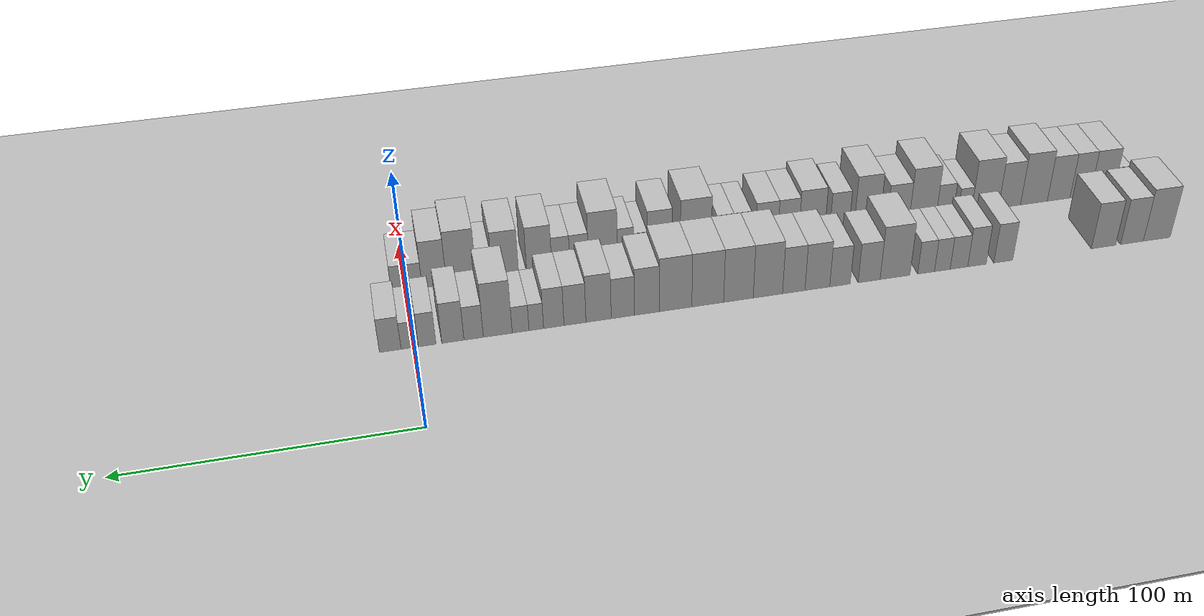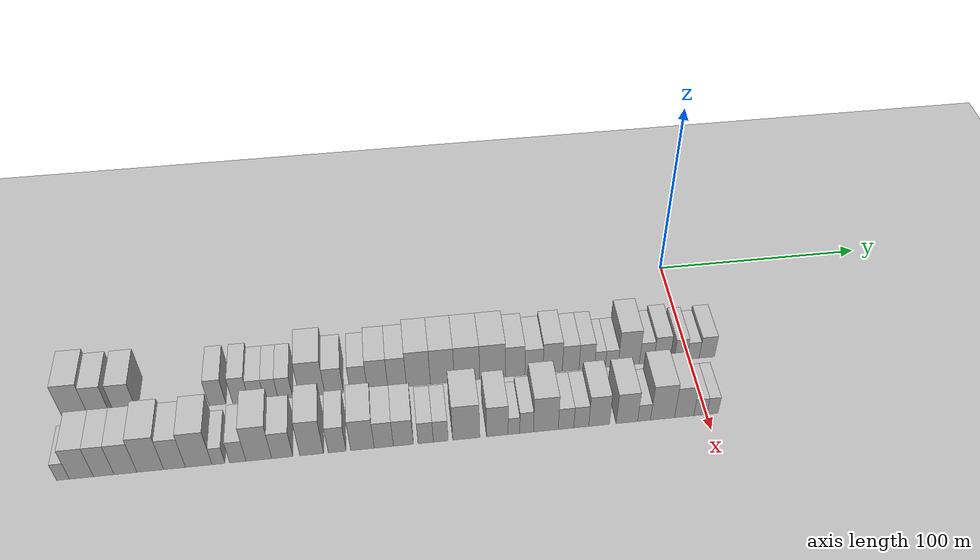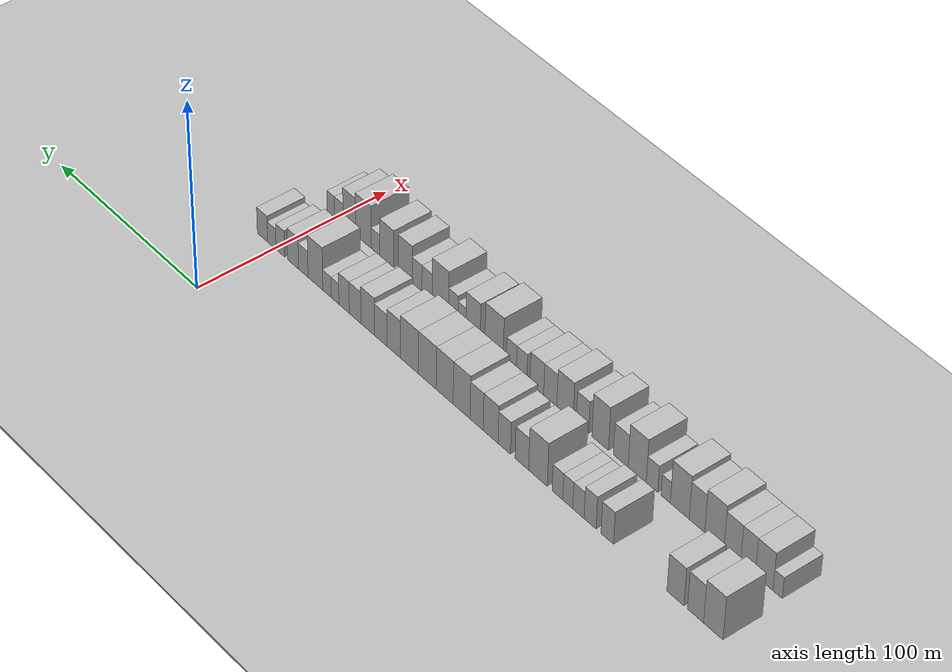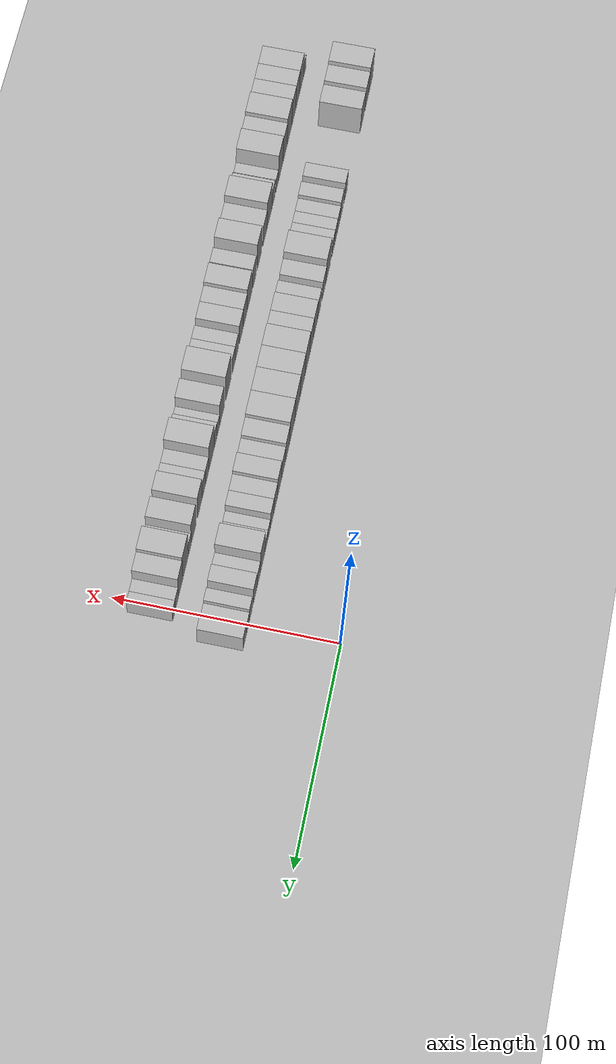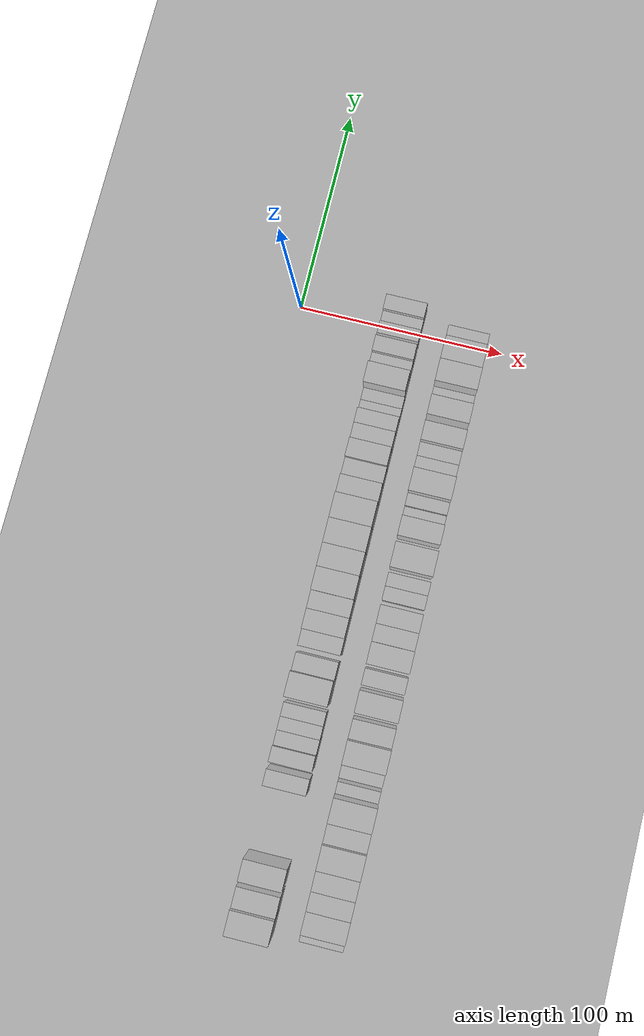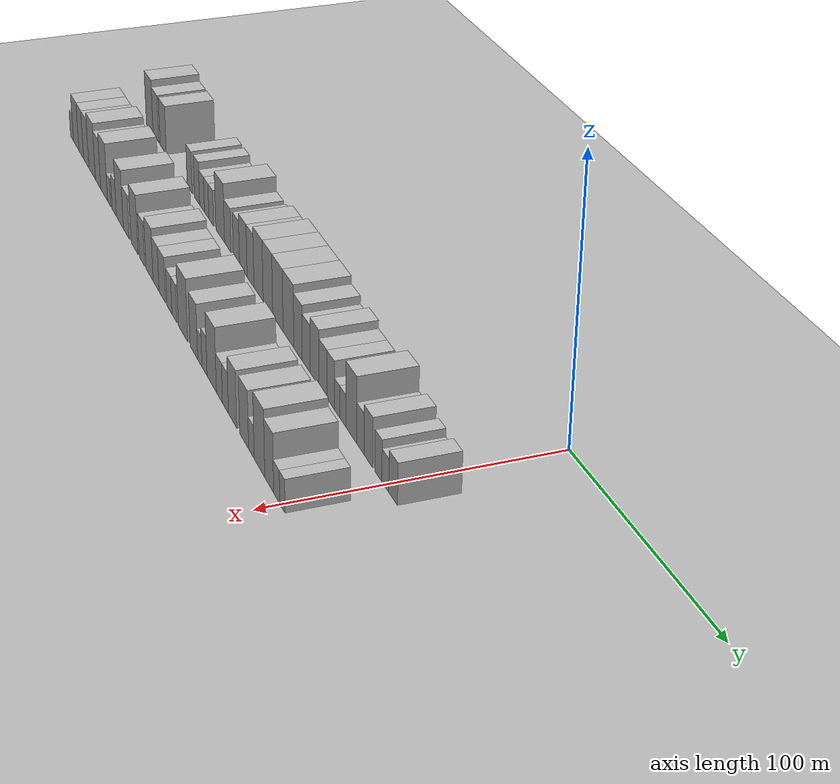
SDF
<sdf version="1.6">
 <world name="default">
  <include><name>ground_plane_1</name><uri>model://HANNAS_ground_plane</uri></include>
  <include>
   <name>ground_plane_2</name>
   <uri>model://HANNAS_ground_plane</uri>
   <pose>100 0 0  0 0 0</pose>
  </include>
  <model name="building_1">
   <static>1</static>
   <pose>50.0000 -278.4930 0 0.000000 0.000000 0.000000</pose>
   <link name="link">
    <pose>0 0 12.00 0 0 0</pose>
    <collision name="collision"><geometry><box><size>20.0000 11.0139 24.0000</size></box></geometry></collision>
    <visual name="visual">
     <cast_shadows>0</cast_shadows>
     <geometry><box><size>20.0000 11.0139 24.0000</size></box></geometry>
     <material>
      <script>
       <uri>model://HANNAS_wall/materials/scripts</uri>
       <uri>model://HANNAS_wall/materials/textures</uri>
       <name>vrc/HANNAS_wall</name>
      </script>
     </material>
    </visual>
   </link>
  </model>
  <model name="building_2">
   <static>1</static>
   <pose>50.0000 -268.3517 0 0.000000 0.000000 0.000000</pose>
   <link name="link">
    <pose>0 0 10.50 0 0 0</pose>
    <collision name="collision"><geometry><box><size>20.0000 9.2688 21.0000</size></box></geometry></collision>
    <visual name="visual">
     <cast_shadows>0</cast_shadows>
     <geometry><box><size>20.0000 9.2688 21.0000</size></box></geometry>
     <material>
      <script>
       <uri>model://HANNAS_wall/materials/scripts</uri>
       <uri>model://HANNAS_wall/materials/textures</uri>
       <name>vrc/HANNAS_wall</name>
      </script>
     </material>
    </visual>
   </link>
  </model>
  <model name="building_3">
   <static>1</static>
   <pose>50.0000 -256.8036 0 0.000000 0.000000 0.000000</pose>
   <link name="link">
    <pose>0 0 10.50 0 0 0</pose>
    <collision name="collision"><geometry><box><size>20.0000 9.8273 21.0000</size></box></geometry></collision>
    <visual name="visual">
     <cast_shadows>0</cast_shadows>
     <geometry><box><size>20.0000 9.8273 21.0000</size></box></geometry>
     <material>
      <script>
       <uri>model://HANNAS_wall/materials/scripts</uri>
       <uri>model://HANNAS_wall/materials/textures</uri>
       <name>vrc/HANNAS_wall</name>
      </script>
     </material>
    </visual>
   </link>
  </model>
  <model name="building_4">
   <static>1</static>
   <pose>50.0000 -216.7169 0 0.000000 0.000000 0.000000</pose>
   <link name="link">
    <pose>0 0 9.00 0 0 0</pose>
    <collision name="collision"><geometry><box><size>20.0000 7.4487 18.0000</size></box></geometry></collision>
    <visual name="visual">
     <cast_shadows>0</cast_shadows>
     <geometry><box><size>20.0000 7.4487 18.0000</size></box></geometry>
     <material>
      <script>
       <uri>model://HANNAS_wall/materials/scripts</uri>
       <uri>model://HANNAS_wall/materials/textures</uri>
       <name>vrc/HANNAS_wall</name>
      </script>
     </material>
    </visual>
   </link>
  </model>
  <model name="building_5">
   <static>1</static>
   <pose>50.0000 -206.3585 0 0.000000 0.000000 0.000000</pose>
   <link name="link">
    <pose>0 0 9.00 0 0 0</pose>
    <collision name="collision"><geometry><box><size>20.0000 7.2680 18.0000</size></box></geometry></collision>
    <visual name="visual">
     <cast_shadows>0</cast_shadows>
     <geometry><box><size>20.0000 7.2680 18.0000</size></box></geometry>
     <material>
      <script>
       <uri>model://HANNAS_wall/materials/scripts</uri>
       <uri>model://HANNAS_wall/materials/textures</uri>
       <name>vrc/HANNAS_wall</name>
      </script>
     </material>
    </visual>
   </link>
  </model>
  <model name="building_6">
   <static>1</static>
   <pose>50.0000 -199.2980 0 0.000000 0.000000 0.000000</pose>
   <link name="link">
    <pose>0 0 7.50 0 0 0</pose>
    <collision name="collision"><geometry><box><size>20.0000 6.8530 15.0000</size></box></geometry></collision>
    <visual name="visual">
     <cast_shadows>0</cast_shadows>
     <geometry><box><size>20.0000 6.8530 15.0000</size></box></geometry>
     <material>
      <script>
       <uri>model://HANNAS_wall/materials/scripts</uri>
       <uri>model://HANNAS_wall/materials/textures</uri>
       <name>vrc/HANNAS_wall</name>
      </script>
     </material>
    </visual>
   </link>
  </model>
  <model name="building_7">
   <static>1</static>
   <pose>50.0000 -192.8294 0 0.000000 0.000000 0.000000</pose>
   <link name="link">
    <pose>0 0 7.50 0 0 0</pose>
    <collision name="collision"><geometry><box><size>20.0000 6.0842 15.0000</size></box></geometry></collision>
    <visual name="visual">
     <cast_shadows>0</cast_shadows>
     <geometry><box><size>20.0000 6.0842 15.0000</size></box></geometry>
     <material>
      <script>
       <uri>model://HANNAS_wall/materials/scripts</uri>
       <uri>model://HANNAS_wall/materials/textures</uri>
       <name>vrc/HANNAS_wall</name>
      </script>
     </material>
    </visual>
   </link>
  </model>
  <model name="building_8">
   <static>1</static>
   <pose>50.0000 -186.5375 0 0.000000 0.000000 0.000000</pose>
   <link name="link">
    <pose>0 0 7.50 0 0 0</pose>
    <collision name="collision"><geometry><box><size>20.0000 6.4996 15.0000</size></box></geometry></collision>
    <visual name="visual">
     <cast_shadows>0</cast_shadows>
     <geometry><box><size>20.0000 6.4996 15.0000</size></box></geometry>
     <material>
      <script>
       <uri>model://HANNAS_wall/materials/scripts</uri>
       <uri>model://HANNAS_wall/materials/textures</uri>
       <name>vrc/HANNAS_wall</name>
      </script>
     </material>
    </visual>
   </link>
  </model>
  <model name="building_9">
   <static>1</static>
   <pose>50.0000 -174.5439 0 0.000000 0.000000 0.000000</pose>
   <link name="link">
    <pose>0 0 12.00 0 0 0</pose>
    <collision name="collision"><geometry><box><size>20.0000 11.4876 24.0000</size></box></geometry></collision>
    <visual name="visual">
     <cast_shadows>0</cast_shadows>
     <geometry><box><size>20.0000 11.4876 24.0000</size></box></geometry>
     <material>
      <script>
       <uri>model://HANNAS_wall/materials/scripts</uri>
       <uri>model://HANNAS_wall/materials/textures</uri>
       <name>vrc/HANNAS_wall</name>
      </script>
     </material>
    </visual>
   </link>
  </model>
  <model name="building_10">
   <static>1</static>
   <pose>50.0000 -164.6084 0 0.000000 0.000000 0.000000</pose>
   <link name="link">
    <pose>0 0 9.00 0 0 0</pose>
    <collision name="collision"><geometry><box><size>20.0000 8.3834 18.0000</size></box></geometry></collision>
    <visual name="visual">
     <cast_shadows>0</cast_shadows>
     <geometry><box><size>20.0000 8.3834 18.0000</size></box></geometry>
     <material>
      <script>
       <uri>model://HANNAS_wall/materials/scripts</uri>
       <uri>model://HANNAS_wall/materials/textures</uri>
       <name>vrc/HANNAS_wall</name>
      </script>
     </material>
    </visual>
   </link>
  </model>
  <model name="building_11">
   <static>1</static>
   <pose>50.0000 -153.5251 0 0.000000 0.000000 0.000000</pose>
   <link name="link">
    <pose>0 0 9.00 0 0 0</pose>
    <collision name="collision"><geometry><box><size>20.0000 7.7832 18.0000</size></box></geometry></collision>
    <visual name="visual">
     <cast_shadows>0</cast_shadows>
     <geometry><box><size>20.0000 7.7832 18.0000</size></box></geometry>
     <material>
      <script>
       <uri>model://HANNAS_wall/materials/scripts</uri>
       <uri>model://HANNAS_wall/materials/textures</uri>
       <name>vrc/HANNAS_wall</name>
      </script>
     </material>
    </visual>
   </link>
  </model>
  <model name="building_12">
   <static>1</static>
   <pose>50.0000 -144.9641 0 0.000000 0.000000 0.000000</pose>
   <link name="link">
    <pose>0 0 10.50 0 0 0</pose>
    <collision name="collision"><geometry><box><size>20.0000 9.3388 21.0000</size></box></geometry></collision>
    <visual name="visual">
     <cast_shadows>0</cast_shadows>
     <geometry><box><size>20.0000 9.3388 21.0000</size></box></geometry>
     <material>
      <script>
       <uri>model://HANNAS_wall/materials/scripts</uri>
       <uri>model://HANNAS_wall/materials/textures</uri>
       <name>vrc/HANNAS_wall</name>
      </script>
     </material>
    </visual>
   </link>
  </model>
  <model name="building_13">
   <static>1</static>
   <pose>50.0000 -136.0853 0 0.000000 0.000000 0.000000</pose>
   <link name="link">
    <pose>0 0 10.50 0 0 0</pose>
    <collision name="collision"><geometry><box><size>20.0000 8.4189 21.0000</size></box></geometry></collision>
    <visual name="visual">
     <cast_shadows>0</cast_shadows>
     <geometry><box><size>20.0000 8.4189 21.0000</size></box></geometry>
     <material>
      <script>
       <uri>model://HANNAS_wall/materials/scripts</uri>
       <uri>model://HANNAS_wall/materials/textures</uri>
       <name>vrc/HANNAS_wall</name>
      </script>
     </material>
    </visual>
   </link>
  </model>
  <model name="building_14">
   <static>1</static>
   <pose>50.0000 -126.4248 0 0.000000 0.000000 0.000000</pose>
   <link name="link">
    <pose>0 0 12.00 0 0 0</pose>
    <collision name="collision"><geometry><box><size>20.0000 10.9022 24.0000</size></box></geometry></collision>
    <visual name="visual">
     <cast_shadows>0</cast_shadows>
     <geometry><box><size>20.0000 10.9022 24.0000</size></box></geometry>
     <material>
      <script>
       <uri>model://HANNAS_wall/materials/scripts</uri>
       <uri>model://HANNAS_wall/materials/textures</uri>
       <name>vrc/HANNAS_wall</name>
      </script>
     </material>
    </visual>
   </link>
  </model>
  <model name="building_15">
   <static>1</static>
   <pose>50.0000 -115.5003 0 0.000000 0.000000 0.000000</pose>
   <link name="link">
    <pose>0 0 12.00 0 0 0</pose>
    <collision name="collision"><geometry><box><size>20.0000 10.9469 24.0000</size></box></geometry></collision>
    <visual name="visual">
     <cast_shadows>0</cast_shadows>
     <geometry><box><size>20.0000 10.9469 24.0000</size></box></geometry>
     <material>
      <script>
       <uri>model://HANNAS_wall/materials/scripts</uri>
       <uri>model://HANNAS_wall/materials/textures</uri>
       <name>vrc/HANNAS_wall</name>
      </script>
     </material>
    </visual>
   </link>
  </model>
  <model name="building_16">
   <static>1</static>
   <pose>50.0000 -104.1812 0 0.000000 0.000000 0.000000</pose>
   <link name="link">
    <pose>0 0 12.00 0 0 0</pose>
    <collision name="collision"><geometry><box><size>20.0000 11.6913 24.0000</size></box></geometry></collision>
    <visual name="visual">
     <cast_shadows>0</cast_shadows>
     <geometry><box><size>20.0000 11.6913 24.0000</size></box></geometry>
     <material>
      <script>
       <uri>model://HANNAS_wall/materials/scripts</uri>
       <uri>model://HANNAS_wall/materials/textures</uri>
       <name>vrc/HANNAS_wall</name>
      </script>
     </material>
    </visual>
   </link>
  </model>
  <model name="building_17">
   <static>1</static>
   <pose>50.0000 -92.3757 0 0.000000 0.000000 0.000000</pose>
   <link name="link">
    <pose>0 0 12.00 0 0 0</pose>
    <collision name="collision"><geometry><box><size>20.0000 11.9197 24.0000</size></box></geometry></collision>
    <visual name="visual">
     <cast_shadows>0</cast_shadows>
     <geometry><box><size>20.0000 11.9197 24.0000</size></box></geometry>
     <material>
      <script>
       <uri>model://HANNAS_wall/materials/scripts</uri>
       <uri>model://HANNAS_wall/materials/textures</uri>
       <name>vrc/HANNAS_wall</name>
      </script>
     </material>
    </visual>
   </link>
  </model>
  <model name="building_18">
   <static>1</static>
   <pose>50.0000 -81.9634 0 0.000000 0.000000 0.000000</pose>
   <link name="link">
    <pose>0 0 10.50 0 0 0</pose>
    <collision name="collision"><geometry><box><size>20.0000 8.9050 21.0000</size></box></geometry></collision>
    <visual name="visual">
     <cast_shadows>0</cast_shadows>
     <geometry><box><size>20.0000 8.9050 21.0000</size></box></geometry>
     <material>
      <script>
       <uri>model://HANNAS_wall/materials/scripts</uri>
       <uri>model://HANNAS_wall/materials/textures</uri>
       <name>vrc/HANNAS_wall</name>
      </script>
     </material>
    </visual>
   </link>
  </model>
  <model name="building_19">
   <static>1</static>
   <pose>50.0000 -73.3345 0 0.000000 0.000000 0.000000</pose>
   <link name="link">
    <pose>0 0 9.00 0 0 0</pose>
    <collision name="collision"><geometry><box><size>20.0000 8.3528 18.0000</size></box></geometry></collision>
    <visual name="visual">
     <cast_shadows>0</cast_shadows>
     <geometry><box><size>20.0000 8.3528 18.0000</size></box></geometry>
     <material>
      <script>
       <uri>model://HANNAS_wall/materials/scripts</uri>
       <uri>model://HANNAS_wall/materials/textures</uri>
       <name>vrc/HANNAS_wall</name>
      </script>
     </material>
    </visual>
   </link>
  </model>
  <model name="building_20">
   <static>1</static>
   <pose>50.0000 -64.6351 0 0.000000 0.000000 0.000000</pose>
   <link name="link">
    <pose>0 0 10.50 0 0 0</pose>
    <collision name="collision"><geometry><box><size>20.0000 9.0460 21.0000</size></box></geometry></collision>
    <visual name="visual">
     <cast_shadows>0</cast_shadows>
     <geometry><box><size>20.0000 9.0460 21.0000</size></box></geometry>
     <material>
      <script>
       <uri>model://HANNAS_wall/materials/scripts</uri>
       <uri>model://HANNAS_wall/materials/textures</uri>
       <name>vrc/HANNAS_wall</name>
      </script>
     </material>
    </visual>
   </link>
  </model>
  <model name="building_21">
   <static>1</static>
   <pose>50.0000 -56.1918 0 0.000000 0.000000 0.000000</pose>
   <link name="link">
    <pose>0 0 9.00 0 0 0</pose>
    <collision name="collision"><geometry><box><size>20.0000 7.8406 18.0000</size></box></geometry></collision>
    <visual name="visual">
     <cast_shadows>0</cast_shadows>
     <geometry><box><size>20.0000 7.8406 18.0000</size></box></geometry>
     <material>
      <script>
       <uri>model://HANNAS_wall/materials/scripts</uri>
       <uri>model://HANNAS_wall/materials/textures</uri>
       <name>vrc/HANNAS_wall</name>
      </script>
     </material>
    </visual>
   </link>
  </model>
  <model name="building_22">
   <static>1</static>
   <pose>50.0000 -48.6585 0 0.000000 0.000000 0.000000</pose>
   <link name="link">
    <pose>0 0 9.00 0 0 0</pose>
    <collision name="collision"><geometry><box><size>20.0000 7.2261 18.0000</size></box></geometry></collision>
    <visual name="visual">
     <cast_shadows>0</cast_shadows>
     <geometry><box><size>20.0000 7.2261 18.0000</size></box></geometry>
     <material>
      <script>
       <uri>model://HANNAS_wall/materials/scripts</uri>
       <uri>model://HANNAS_wall/materials/textures</uri>
       <name>vrc/HANNAS_wall</name>
      </script>
     </material>
    </visual>
   </link>
  </model>
  <model name="building_23">
   <static>1</static>
   <pose>50.0000 -42.4910 0 0.000000 0.000000 0.000000</pose>
   <link name="link">
    <pose>0 0 6.00 0 0 0</pose>
    <collision name="collision"><geometry><box><size>20.0000 5.1089 12.0000</size></box></geometry></collision>
    <visual name="visual">
     <cast_shadows>0</cast_shadows>
     <geometry><box><size>20.0000 5.1089 12.0000</size></box></geometry>
     <material>
      <script>
       <uri>model://HANNAS_wall/materials/scripts</uri>
       <uri>model://HANNAS_wall/materials/textures</uri>
       <name>vrc/HANNAS_wall</name>
      </script>
     </material>
    </visual>
   </link>
  </model>
  <model name="building_24">
   <static>1</static>
   <pose>50.0000 -36.9791 0 0.000000 0.000000 0.000000</pose>
   <link name="link">
    <pose>0 0 6.00 0 0 0</pose>
    <collision name="collision"><geometry><box><size>20.0000 5.9149 12.0000</size></box></geometry></collision>
    <visual name="visual">
     <cast_shadows>0</cast_shadows>
     <geometry><box><size>20.0000 5.9149 12.0000</size></box></geometry>
     <material>
      <script>
       <uri>model://HANNAS_wall/materials/scripts</uri>
       <uri>model://HANNAS_wall/materials/textures</uri>
       <name>vrc/HANNAS_wall</name>
      </script>
     </material>
    </visual>
   </link>
  </model>
  <model name="building_25">
   <static>1</static>
   <pose>50.0000 -28.9703 0 0.000000 0.000000 0.000000</pose>
   <link name="link">
    <pose>0 0 12.00 0 0 0</pose>
    <collision name="collision"><geometry><box><size>20.0000 10.1026 24.0000</size></box></geometry></collision>
    <visual name="visual">
     <cast_shadows>0</cast_shadows>
     <geometry><box><size>20.0000 10.1026 24.0000</size></box></geometry>
     <material>
      <script>
       <uri>model://HANNAS_wall/materials/scripts</uri>
       <uri>model://HANNAS_wall/materials/textures</uri>
       <name>vrc/HANNAS_wall</name>
      </script>
     </material>
    </visual>
   </link>
  </model>
  <model name="building_26">
   <static>1</static>
   <pose>50.0000 -20.5697 0 0.000000 0.000000 0.000000</pose>
   <link name="link">
    <pose>0 0 7.50 0 0 0</pose>
    <collision name="collision"><geometry><box><size>20.0000 6.6987 15.0000</size></box></geometry></collision>
    <visual name="visual">
     <cast_shadows>0</cast_shadows>
     <geometry><box><size>20.0000 6.6987 15.0000</size></box></geometry>
     <material>
      <script>
       <uri>model://HANNAS_wall/materials/scripts</uri>
       <uri>model://HANNAS_wall/materials/textures</uri>
       <name>vrc/HANNAS_wall</name>
      </script>
     </material>
    </visual>
   </link>
  </model>
  <model name="building_27">
   <static>1</static>
   <pose>50.0000 -13.3778 0 0.000000 0.000000 0.000000</pose>
   <link name="link">
    <pose>0 0 9.00 0 0 0</pose>
    <collision name="collision"><geometry><box><size>20.0000 7.6851 18.0000</size></box></geometry></collision>
    <visual name="visual">
     <cast_shadows>0</cast_shadows>
     <geometry><box><size>20.0000 7.6851 18.0000</size></box></geometry>
     <material>
      <script>
       <uri>model://HANNAS_wall/materials/scripts</uri>
       <uri>model://HANNAS_wall/materials/textures</uri>
       <name>vrc/HANNAS_wall</name>
      </script>
     </material>
    </visual>
   </link>
  </model>
  <model name="building_28">
   <static>1</static>
   <pose>50.0000 -4.5084 0 0.000000 0.000000 0.000000</pose>
   <link name="link">
    <pose>0 0 7.50 0 0 0</pose>
    <collision name="collision"><geometry><box><size>20.0000 6.0537 15.0000</size></box></geometry></collision>
    <visual name="visual">
     <cast_shadows>0</cast_shadows>
     <geometry><box><size>20.0000 6.0537 15.0000</size></box></geometry>
     <material>
      <script>
       <uri>model://HANNAS_wall/materials/scripts</uri>
       <uri>model://HANNAS_wall/materials/textures</uri>
       <name>vrc/HANNAS_wall</name>
      </script>
     </material>
    </visual>
   </link>
  </model>
  <model name="building_29">
   <static>1</static>
   <pose>50.0000 1.4817 0 0.000000 0.000000 0.000000</pose>
   <link name="link">
    <pose>0 0 6.00 0 0 0</pose>
    <collision name="collision"><geometry><box><size>20.0000 5.9267 12.0000</size></box></geometry></collision>
    <visual name="visual">
     <cast_shadows>0</cast_shadows>
     <geometry><box><size>20.0000 5.9267 12.0000</size></box></geometry>
     <material>
      <script>
       <uri>model://HANNAS_wall/materials/scripts</uri>
       <uri>model://HANNAS_wall/materials/textures</uri>
       <name>vrc/HANNAS_wall</name>
      </script>
     </material>
    </visual>
   </link>
  </model>
  <model name="building_30">
   <static>1</static>
   <pose>50.0000 8.1328 0 0.000000 0.000000 0.000000</pose>
   <link name="link">
    <pose>0 0 7.50 0 0 0</pose>
    <collision name="collision"><geometry><box><size>20.0000 7.3756 15.0000</size></box></geometry></collision>
    <visual name="visual">
     <cast_shadows>0</cast_shadows>
     <geometry><box><size>20.0000 7.3756 15.0000</size></box></geometry>
     <material>
      <script>
       <uri>model://HANNAS_wall/materials/scripts</uri>
       <uri>model://HANNAS_wall/materials/textures</uri>
       <name>vrc/HANNAS_wall</name>
      </script>
     </material>
    </visual>
   </link>
  </model>
  <model name="building_62">
   <static>1</static>
   <pose>82.0000 -279.3478 0 0.000000 0.000000 0.000000</pose>
   <link name="link">
    <pose>0 0 6.00 0 0 0</pose>
    <collision name="collision"><geometry><box><size>20.0000 5.3044 12.0000</size></box></geometry></collision>
    <visual name="visual">
     <cast_shadows>0</cast_shadows>
     <geometry><box><size>20.0000 5.3044 12.0000</size></box></geometry>
     <material>
      <script>
       <uri>model://HANNAS_wall/materials/scripts</uri>
       <uri>model://HANNAS_wall/materials/textures</uri>
       <name>vrc/HANNAS_wall</name>
      </script>
     </material>
    </visual>
   </link>
  </model>
  <model name="building_63">
   <static>1</static>
   <pose>82.0000 -271.6975 0 0.000000 0.000000 0.000000</pose>
   <link name="link">
    <pose>0 0 10.50 0 0 0</pose>
    <collision name="collision"><geometry><box><size>20.0000 9.9961 21.0000</size></box></geometry></collision>
    <visual name="visual">
     <cast_shadows>0</cast_shadows>
     <geometry><box><size>20.0000 9.9961 21.0000</size></box></geometry>
     <material>
      <script>
       <uri>model://HANNAS_wall/materials/scripts</uri>
       <uri>model://HANNAS_wall/materials/textures</uri>
       <name>vrc/HANNAS_wall</name>
      </script>
     </material>
    </visual>
   </link>
  </model>
  <model name="building_64">
   <static>1</static>
   <pose>82.0000 -262.4329 0 0.000000 0.000000 0.000000</pose>
   <link name="link">
    <pose>0 0 10.50 0 0 0</pose>
    <collision name="collision"><geometry><box><size>20.0000 8.5331 21.0000</size></box></geometry></collision>
    <visual name="visual">
     <cast_shadows>0</cast_shadows>
     <geometry><box><size>20.0000 8.5331 21.0000</size></box></geometry>
     <material>
      <script>
       <uri>model://HANNAS_wall/materials/scripts</uri>
       <uri>model://HANNAS_wall/materials/textures</uri>
       <name>vrc/HANNAS_wall</name>
      </script>
     </material>
    </visual>
   </link>
  </model>
  <model name="building_65">
   <static>1</static>
   <pose>82.0000 -253.4055 0 0.000000 0.000000 0.000000</pose>
   <link name="link">
    <pose>0 0 10.50 0 0 0</pose>
    <collision name="collision"><geometry><box><size>20.0000 9.5218 21.0000</size></box></geometry></collision>
    <visual name="visual">
     <cast_shadows>0</cast_shadows>
     <geometry><box><size>20.0000 9.5218 21.0000</size></box></geometry>
     <material>
      <script>
       <uri>model://HANNAS_wall/materials/scripts</uri>
       <uri>model://HANNAS_wall/materials/textures</uri>
       <name>vrc/HANNAS_wall</name>
      </script>
     </material>
    </visual>
   </link>
  </model>
  <model name="building_66">
   <static>1</static>
   <pose>82.0000 -243.0449 0 0.000000 0.000000 0.000000</pose>
   <link name="link">
    <pose>0 0 12.00 0 0 0</pose>
    <collision name="collision"><geometry><box><size>20.0000 11.1993 24.0000</size></box></geometry></collision>
    <visual name="visual">
     <cast_shadows>0</cast_shadows>
     <geometry><box><size>20.0000 11.1993 24.0000</size></box></geometry>
     <material>
      <script>
       <uri>model://HANNAS_wall/materials/scripts</uri>
       <uri>model://HANNAS_wall/materials/textures</uri>
       <name>vrc/HANNAS_wall</name>
      </script>
     </material>
    </visual>
   </link>
  </model>
  <model name="building_67">
   <static>1</static>
   <pose>82.0000 -232.8894 0 0.000000 0.000000 0.000000</pose>
   <link name="link">
    <pose>0 0 10.50 0 0 0</pose>
    <collision name="collision"><geometry><box><size>20.0000 9.1117 21.0000</size></box></geometry></collision>
    <visual name="visual">
     <cast_shadows>0</cast_shadows>
     <geometry><box><size>20.0000 9.1117 21.0000</size></box></geometry>
     <material>
      <script>
       <uri>model://HANNAS_wall/materials/scripts</uri>
       <uri>model://HANNAS_wall/materials/textures</uri>
       <name>vrc/HANNAS_wall</name>
      </script>
     </material>
    </visual>
   </link>
  </model>
  <model name="building_68">
   <static>1</static>
   <pose>82.0000 -222.7405 0 0.000000 0.000000 0.000000</pose>
   <link name="link">
    <pose>0 0 12.00 0 0 0</pose>
    <collision name="collision"><geometry><box><size>20.0000 11.1861 24.0000</size></box></geometry></collision>
    <visual name="visual">
     <cast_shadows>0</cast_shadows>
     <geometry><box><size>20.0000 11.1861 24.0000</size></box></geometry>
     <material>
      <script>
       <uri>model://HANNAS_wall/materials/scripts</uri>
       <uri>model://HANNAS_wall/materials/textures</uri>
       <name>vrc/HANNAS_wall</name>
      </script>
     </material>
    </visual>
   </link>
  </model>
  <model name="building_69">
   <static>1</static>
   <pose>82.0000 -214.4171 0 0.000000 0.000000 0.000000</pose>
   <link name="link">
    <pose>0 0 6.00 0 0 0</pose>
    <collision name="collision"><geometry><box><size>20.0000 5.4606 12.0000</size></box></geometry></collision>
    <visual name="visual">
     <cast_shadows>0</cast_shadows>
     <geometry><box><size>20.0000 5.4606 12.0000</size></box></geometry>
     <material>
      <script>
       <uri>model://HANNAS_wall/materials/scripts</uri>
       <uri>model://HANNAS_wall/materials/textures</uri>
       <name>vrc/HANNAS_wall</name>
      </script>
     </material>
    </visual>
   </link>
  </model>
  <model name="building_70">
   <static>1</static>
   <pose>82.0000 -206.2249 0 0.000000 0.000000 0.000000</pose>
   <link name="link">
    <pose>0 0 7.50 0 0 0</pose>
    <collision name="collision"><geometry><box><size>20.0000 6.9239 15.0000</size></box></geometry></collision>
    <visual name="visual">
     <cast_shadows>0</cast_shadows>
     <geometry><box><size>20.0000 6.9239 15.0000</size></box></geometry>
     <material>
      <script>
       <uri>model://HANNAS_wall/materials/scripts</uri>
       <uri>model://HANNAS_wall/materials/textures</uri>
       <name>vrc/HANNAS_wall</name>
      </script>
     </material>
    </visual>
   </link>
  </model>
  <model name="building_71">
   <static>1</static>
   <pose>82.0000 -197.2889 0 0.000000 0.000000 0.000000</pose>
   <link name="link">
    <pose>0 0 12.00 0 0 0</pose>
    <collision name="collision"><geometry><box><size>20.0000 10.9481 24.0000</size></box></geometry></collision>
    <visual name="visual">
     <cast_shadows>0</cast_shadows>
     <geometry><box><size>20.0000 10.9481 24.0000</size></box></geometry>
     <material>
      <script>
       <uri>model://HANNAS_wall/materials/scripts</uri>
       <uri>model://HANNAS_wall/materials/textures</uri>
       <name>vrc/HANNAS_wall</name>
      </script>
     </material>
    </visual>
   </link>
  </model>
  <model name="building_72">
   <static>1</static>
   <pose>82.0000 -187.3232 0 0.000000 0.000000 0.000000</pose>
   <link name="link">
    <pose>0 0 9.00 0 0 0</pose>
    <collision name="collision"><geometry><box><size>20.0000 8.9833 18.0000</size></box></geometry></collision>
    <visual name="visual">
     <cast_shadows>0</cast_shadows>
     <geometry><box><size>20.0000 8.9833 18.0000</size></box></geometry>
     <material>
      <script>
       <uri>model://HANNAS_wall/materials/scripts</uri>
       <uri>model://HANNAS_wall/materials/textures</uri>
       <name>vrc/HANNAS_wall</name>
      </script>
     </material>
    </visual>
   </link>
  </model>
  <model name="building_73">
   <static>1</static>
   <pose>82.0000 -174.7346 0 0.000000 0.000000 0.000000</pose>
   <link name="link">
    <pose>0 0 12.00 0 0 0</pose>
    <collision name="collision"><geometry><box><size>20.0000 10.1937 24.0000</size></box></geometry></collision>
    <visual name="visual">
     <cast_shadows>0</cast_shadows>
     <geometry><box><size>20.0000 10.1937 24.0000</size></box></geometry>
     <material>
      <script>
       <uri>model://HANNAS_wall/materials/scripts</uri>
       <uri>model://HANNAS_wall/materials/textures</uri>
       <name>vrc/HANNAS_wall</name>
      </script>
     </material>
    </visual>
   </link>
  </model>
  <model name="building_74">
   <static>1</static>
   <pose>82.0000 -163.8076 0 0.000000 0.000000 0.000000</pose>
   <link name="link">
    <pose>0 0 9.00 0 0 0</pose>
    <collision name="collision"><geometry><box><size>20.0000 7.6604 18.0000</size></box></geometry></collision>
    <visual name="visual">
     <cast_shadows>0</cast_shadows>
     <geometry><box><size>20.0000 7.6604 18.0000</size></box></geometry>
     <material>
      <script>
       <uri>model://HANNAS_wall/materials/scripts</uri>
       <uri>model://HANNAS_wall/materials/textures</uri>
       <name>vrc/HANNAS_wall</name>
      </script>
     </material>
    </visual>
   </link>
  </model>
  <model name="building_75">
   <static>1</static>
   <pose>82.0000 -152.8807 0 0.000000 0.000000 0.000000</pose>
   <link name="link">
    <pose>0 0 10.50 0 0 0</pose>
    <collision name="collision"><geometry><box><size>20.0000 10.1933 21.0000</size></box></geometry></collision>
    <visual name="visual">
     <cast_shadows>0</cast_shadows>
     <geometry><box><size>20.0000 10.1933 21.0000</size></box></geometry>
     <material>
      <script>
       <uri>model://HANNAS_wall/materials/scripts</uri>
       <uri>model://HANNAS_wall/materials/textures</uri>
       <name>vrc/HANNAS_wall</name>
      </script>
     </material>
    </visual>
   </link>
  </model>
  <model name="building_76">
   <static>1</static>
   <pose>82.0000 -143.6395 0 0.000000 0.000000 0.000000</pose>
   <link name="link">
    <pose>0 0 9.00 0 0 0</pose>
    <collision name="collision"><geometry><box><size>20.0000 8.2890 18.0000</size></box></geometry></collision>
    <visual name="visual">
     <cast_shadows>0</cast_shadows>
     <geometry><box><size>20.0000 8.2890 18.0000</size></box></geometry>
     <material>
      <script>
       <uri>model://HANNAS_wall/materials/scripts</uri>
       <uri>model://HANNAS_wall/materials/textures</uri>
       <name>vrc/HANNAS_wall</name>
      </script>
     </material>
    </visual>
   </link>
  </model>
  <model name="building_77">
   <static>1</static>
   <pose>82.0000 -135.1309 0 0.000000 0.000000 0.000000</pose>
   <link name="link">
    <pose>0 0 9.00 0 0 0</pose>
    <collision name="collision"><geometry><box><size>20.0000 8.7281 18.0000</size></box></geometry></collision>
    <visual name="visual">
     <cast_shadows>0</cast_shadows>
     <geometry><box><size>20.0000 8.7281 18.0000</size></box></geometry>
     <material>
      <script>
       <uri>model://HANNAS_wall/materials/scripts</uri>
       <uri>model://HANNAS_wall/materials/textures</uri>
       <name>vrc/HANNAS_wall</name>
      </script>
     </material>
    </visual>
   </link>
  </model>
  <model name="building_78">
   <static>1</static>
   <pose>82.0000 -125.4253 0 0.000000 0.000000 0.000000</pose>
   <link name="link">
    <pose>0 0 7.50 0 0 0</pose>
    <collision name="collision"><geometry><box><size>20.0000 6.6832 15.0000</size></box></geometry></collision>
    <visual name="visual">
     <cast_shadows>0</cast_shadows>
     <geometry><box><size>20.0000 6.6832 15.0000</size></box></geometry>
     <material>
      <script>
       <uri>model://HANNAS_wall/materials/scripts</uri>
       <uri>model://HANNAS_wall/materials/textures</uri>
       <name>vrc/HANNAS_wall</name>
      </script>
     </material>
    </visual>
   </link>
  </model>
  <model name="building_79">
   <static>1</static>
   <pose>82.0000 -118.8463 0 0.000000 0.000000 0.000000</pose>
   <link name="link">
    <pose>0 0 7.50 0 0 0</pose>
    <collision name="collision"><geometry><box><size>20.0000 6.4748 15.0000</size></box></geometry></collision>
    <visual name="visual">
     <cast_shadows>0</cast_shadows>
     <geometry><box><size>20.0000 6.4748 15.0000</size></box></geometry>
     <material>
      <script>
       <uri>model://HANNAS_wall/materials/scripts</uri>
       <uri>model://HANNAS_wall/materials/textures</uri>
       <name>vrc/HANNAS_wall</name>
      </script>
     </material>
    </visual>
   </link>
  </model>
  <model name="building_80">
   <static>1</static>
   <pose>82.0000 -107.6737 0 0.000000 0.000000 0.000000</pose>
   <link name="link">
    <pose>0 0 12.00 0 0 0</pose>
    <collision name="collision"><geometry><box><size>20.0000 11.8703 24.0000</size></box></geometry></collision>
    <visual name="visual">
     <cast_shadows>0</cast_shadows>
     <geometry><box><size>20.0000 11.8703 24.0000</size></box></geometry>
     <material>
      <script>
       <uri>model://HANNAS_wall/materials/scripts</uri>
       <uri>model://HANNAS_wall/materials/textures</uri>
       <name>vrc/HANNAS_wall</name>
      </script>
     </material>
    </visual>
   </link>
  </model>
  <model name="building_81">
   <static>1</static>
   <pose>82.0000 -93.9997 0 0.000000 0.000000 0.000000</pose>
   <link name="link">
    <pose>0 0 10.50 0 0 0</pose>
    <collision name="collision"><geometry><box><size>20.0000 9.4776 21.0000</size></box></geometry></collision>
    <visual name="visual">
     <cast_shadows>0</cast_shadows>
     <geometry><box><size>20.0000 9.4776 21.0000</size></box></geometry>
     <material>
      <script>
       <uri>model://HANNAS_wall/materials/scripts</uri>
       <uri>model://HANNAS_wall/materials/textures</uri>
       <name>vrc/HANNAS_wall</name>
      </script>
     </material>
    </visual>
   </link>
  </model>
  <model name="building_82">
   <static>1</static>
   <pose>82.0000 -86.6975 0 0.000000 0.000000 0.000000</pose>
   <link name="link">
    <pose>0 0 6.00 0 0 0</pose>
    <collision name="collision"><geometry><box><size>20.0000 5.1269 12.0000</size></box></geometry></collision>
    <visual name="visual">
     <cast_shadows>0</cast_shadows>
     <geometry><box><size>20.0000 5.1269 12.0000</size></box></geometry>
     <material>
      <script>
       <uri>model://HANNAS_wall/materials/scripts</uri>
       <uri>model://HANNAS_wall/materials/textures</uri>
       <name>vrc/HANNAS_wall</name>
      </script>
     </material>
    </visual>
   </link>
  </model>
  <model name="building_83">
   <static>1</static>
   <pose>82.0000 -81.0775 0 0.000000 0.000000 0.000000</pose>
   <link name="link">
    <pose>0 0 7.50 0 0 0</pose>
    <collision name="collision"><geometry><box><size>20.0000 6.1131 15.0000</size></box></geometry></collision>
    <visual name="visual">
     <cast_shadows>0</cast_shadows>
     <geometry><box><size>20.0000 6.1131 15.0000</size></box></geometry>
     <material>
      <script>
       <uri>model://HANNAS_wall/materials/scripts</uri>
       <uri>model://HANNAS_wall/materials/textures</uri>
       <name>vrc/HANNAS_wall</name>
      </script>
     </material>
    </visual>
   </link>
  </model>
  <model name="building_84">
   <static>1</static>
   <pose>82.0000 -72.5196 0 0.000000 0.000000 0.000000</pose>
   <link name="link">
    <pose>0 0 12.00 0 0 0</pose>
    <collision name="collision"><geometry><box><size>20.0000 11.0028 24.0000</size></box></geometry></collision>
    <visual name="visual">
     <cast_shadows>0</cast_shadows>
     <geometry><box><size>20.0000 11.0028 24.0000</size></box></geometry>
     <material>
      <script>
       <uri>model://HANNAS_wall/materials/scripts</uri>
       <uri>model://HANNAS_wall/materials/textures</uri>
       <name>vrc/HANNAS_wall</name>
      </script>
     </material>
    </visual>
   </link>
  </model>
  <model name="building_85">
   <static>1</static>
   <pose>82.0000 -63.5574 0 0.000000 0.000000 0.000000</pose>
   <link name="link">
    <pose>0 0 7.50 0 0 0</pose>
    <collision name="collision"><geometry><box><size>20.0000 6.9216 15.0000</size></box></geometry></collision>
    <visual name="visual">
     <cast_shadows>0</cast_shadows>
     <geometry><box><size>20.0000 6.9216 15.0000</size></box></geometry>
     <material>
      <script>
       <uri>model://HANNAS_wall/materials/scripts</uri>
       <uri>model://HANNAS_wall/materials/textures</uri>
       <name>vrc/HANNAS_wall</name>
      </script>
     </material>
    </visual>
   </link>
  </model>
  <model name="building_86">
   <static>1</static>
   <pose>82.0000 -56.7613 0 0.000000 0.000000 0.000000</pose>
   <link name="link">
    <pose>0 0 7.50 0 0 0</pose>
    <collision name="collision"><geometry><box><size>20.0000 6.6706 15.0000</size></box></geometry></collision>
    <visual name="visual">
     <cast_shadows>0</cast_shadows>
     <geometry><box><size>20.0000 6.6706 15.0000</size></box></geometry>
     <material>
      <script>
       <uri>model://HANNAS_wall/materials/scripts</uri>
       <uri>model://HANNAS_wall/materials/textures</uri>
       <name>vrc/HANNAS_wall</name>
      </script>
     </material>
    </visual>
   </link>
  </model>
  <model name="building_87">
   <static>1</static>
   <pose>82.0000 -48.7768 0 0.000000 0.000000 0.000000</pose>
   <link name="link">
    <pose>0 0 10.50 0 0 0</pose>
    <collision name="collision"><geometry><box><size>20.0000 9.2984 21.0000</size></box></geometry></collision>
    <visual name="visual">
     <cast_shadows>0</cast_shadows>
     <geometry><box><size>20.0000 9.2984 21.0000</size></box></geometry>
     <material>
      <script>
       <uri>model://HANNAS_wall/materials/scripts</uri>
       <uri>model://HANNAS_wall/materials/textures</uri>
       <name>vrc/HANNAS_wall</name>
      </script>
     </material>
    </visual>
   </link>
  </model>
  <model name="building_88">
   <static>1</static>
   <pose>82.0000 -36.3054 0 0.000000 0.000000 0.000000</pose>
   <link name="link">
    <pose>0 0 10.50 0 0 0</pose>
    <collision name="collision"><geometry><box><size>20.0000 9.6443 21.0000</size></box></geometry></collision>
    <visual name="visual">
     <cast_shadows>0</cast_shadows>
     <geometry><box><size>20.0000 9.6443 21.0000</size></box></geometry>
     <material>
      <script>
       <uri>model://HANNAS_wall/materials/scripts</uri>
       <uri>model://HANNAS_wall/materials/textures</uri>
       <name>vrc/HANNAS_wall</name>
      </script>
     </material>
    </visual>
   </link>
  </model>
  <model name="building_89">
   <static>1</static>
   <pose>82.0000 -28.5764 0 0.000000 0.000000 0.000000</pose>
   <link name="link">
    <pose>0 0 6.00 0 0 0</pose>
    <collision name="collision"><geometry><box><size>20.0000 5.8137 12.0000</size></box></geometry></collision>
    <visual name="visual">
     <cast_shadows>0</cast_shadows>
     <geometry><box><size>20.0000 5.8137 12.0000</size></box></geometry>
     <material>
      <script>
       <uri>model://HANNAS_wall/materials/scripts</uri>
       <uri>model://HANNAS_wall/materials/textures</uri>
       <name>vrc/HANNAS_wall</name>
      </script>
     </material>
    </visual>
   </link>
  </model>
  <model name="building_90">
   <static>1</static>
   <pose>82.0000 -20.2498 0 0.000000 0.000000 0.000000</pose>
   <link name="link">
    <pose>0 0 12.00 0 0 0</pose>
    <collision name="collision"><geometry><box><size>20.0000 10.8395 24.0000</size></box></geometry></collision>
    <visual name="visual">
     <cast_shadows>0</cast_shadows>
     <geometry><box><size>20.0000 10.8395 24.0000</size></box></geometry>
     <material>
      <script>
       <uri>model://HANNAS_wall/materials/scripts</uri>
       <uri>model://HANNAS_wall/materials/textures</uri>
       <name>vrc/HANNAS_wall</name>
      </script>
     </material>
    </visual>
   </link>
  </model>
  <model name="building_91">
   <static>1</static>
   <pose>82.0000 -10.4302 0 0.000000 0.000000 0.000000</pose>
   <link name="link">
    <pose>0 0 10.50 0 0 0</pose>
    <collision name="collision"><geometry><box><size>20.0000 8.7997 21.0000</size></box></geometry></collision>
    <visual name="visual">
     <cast_shadows>0</cast_shadows>
     <geometry><box><size>20.0000 8.7997 21.0000</size></box></geometry>
     <material>
      <script>
       <uri>model://HANNAS_wall/materials/scripts</uri>
       <uri>model://HANNAS_wall/materials/textures</uri>
       <name>vrc/HANNAS_wall</name>
      </script>
     </material>
    </visual>
   </link>
  </model>
  <model name="building_92">
   <static>1</static>
   <pose>82.0000 -3.0596 0 0.000000 0.000000 0.000000</pose>
   <link name="link">
    <pose>0 0 6.00 0 0 0</pose>
    <collision name="collision"><geometry><box><size>20.0000 5.9416 12.0000</size></box></geometry></collision>
    <visual name="visual">
     <cast_shadows>0</cast_shadows>
     <geometry><box><size>20.0000 5.9416 12.0000</size></box></geometry>
     <material>
      <script>
       <uri>model://HANNAS_wall/materials/scripts</uri>
       <uri>model://HANNAS_wall/materials/textures</uri>
       <name>vrc/HANNAS_wall</name>
      </script>
     </material>
    </visual>
   </link>
  </model>
  <model name="building_93">
   <static>1</static>
   <pose>82.0000 2.4791 0 0.000000 0.000000 0.000000</pose>
   <link name="link">
    <pose>0 0 6.00 0 0 0</pose>
    <collision name="collision"><geometry><box><size>20.0000 5.1357 12.0000</size></box></geometry></collision>
    <visual name="visual">
     <cast_shadows>0</cast_shadows>
     <geometry><box><size>20.0000 5.1357 12.0000</size></box></geometry>
     <material>
      <script>
       <uri>model://HANNAS_wall/materials/scripts</uri>
       <uri>model://HANNAS_wall/materials/textures</uri>
       <name>vrc/HANNAS_wall</name>
      </script>
     </material>
    </visual>
   </link>
  </model>
 </world>
</sdf>
